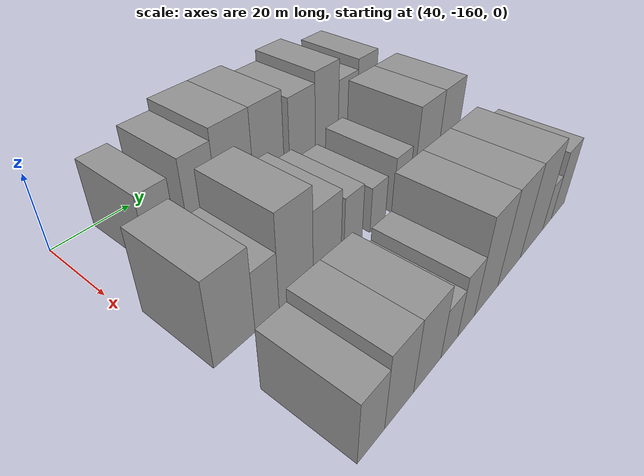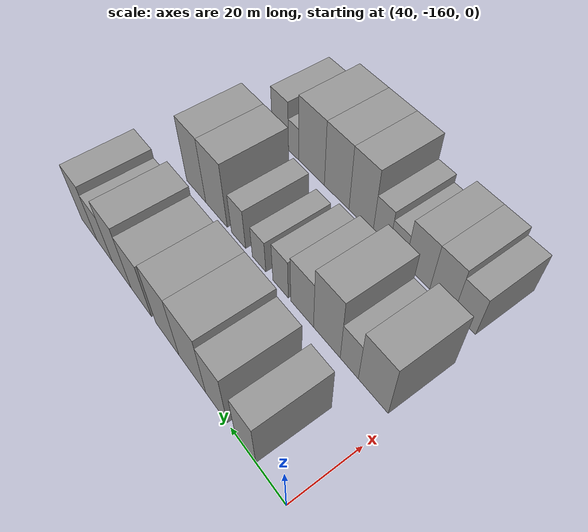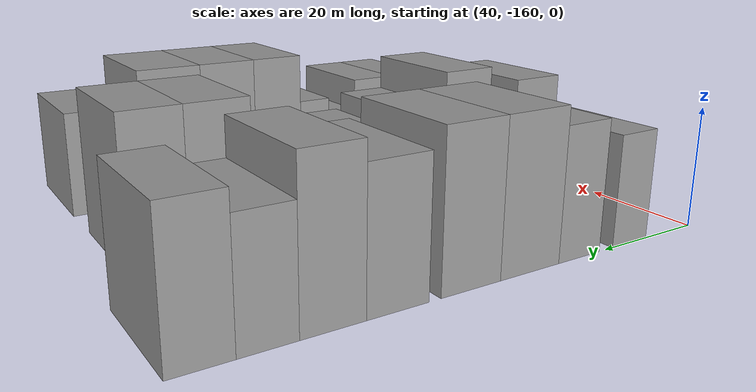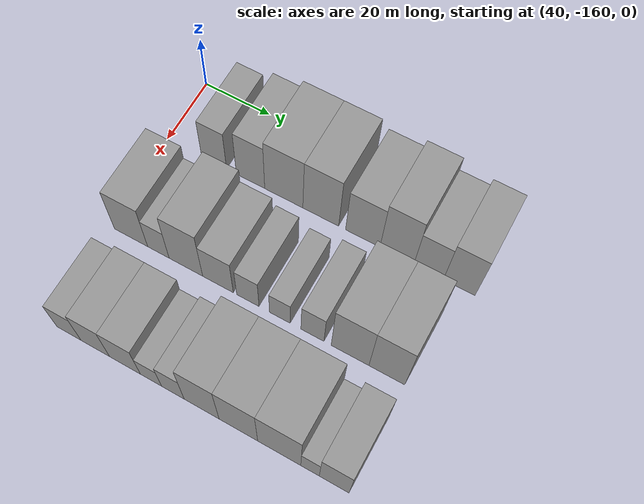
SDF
<sdf version="1.6">
 <world name="default">
  <model name="building_21">
   <static>1</static>
   <pose>50.0000 -145.4644 0 0.000000 0.000000 0.000000</pose>
   <link name="link">
    <pose>0 0 9.00 0 0 0</pose>
    <collision name="collision"><geometry><box><size>20.0000 7.7281 18.0000</size></box></geometry></collision>
    <visual name="visual">
     <cast_shadows>0</cast_shadows>
     <geometry><box><size>20.0000 7.7281 18.0000</size></box></geometry>
     <material>
      <script>
       <uri>model://grey_wall/materials/scripts</uri>
       <uri>model://grey_wall/materials/textures</uri>
       <name>vrc/grey_wall</name>
      </script>
     </material>
    </visual>
   </link>
  </model>
  <model name="building_22">
   <static>1</static>
   <pose>50.0000 -134.2863 0 0.000000 0.000000 0.000000</pose>
   <link name="link">
    <pose>0 0 10.50 0 0 0</pose>
    <collision name="collision"><geometry><box><size>20.0000 8.6280 21.0000</size></box></geometry></collision>
    <visual name="visual">
     <cast_shadows>0</cast_shadows>
     <geometry><box><size>20.0000 8.6280 21.0000</size></box></geometry>
     <material>
      <script>
       <uri>model://grey_wall/materials/scripts</uri>
       <uri>model://grey_wall/materials/textures</uri>
       <name>vrc/grey_wall</name>
      </script>
     </material>
    </visual>
   </link>
  </model>
  <model name="building_23">
   <static>1</static>
   <pose>50.0000 -124.2714 0 0.000000 0.000000 0.000000</pose>
   <link name="link">
    <pose>0 0 12.00 0 0 0</pose>
    <collision name="collision"><geometry><box><size>20.0000 11.4019 24.0000</size></box></geometry></collision>
    <visual name="visual">
     <cast_shadows>0</cast_shadows>
     <geometry><box><size>20.0000 11.4019 24.0000</size></box></geometry>
     <material>
      <script>
       <uri>model://grey_wall/materials/scripts</uri>
       <uri>model://grey_wall/materials/textures</uri>
       <name>vrc/grey_wall</name>
      </script>
     </material>
    </visual>
   </link>
  </model>
  <model name="building_24">
   <static>1</static>
   <pose>50.0000 -113.2940 0 0.000000 0.000000 0.000000</pose>
   <link name="link">
    <pose>0 0 12.00 0 0 0</pose>
    <collision name="collision"><geometry><box><size>20.0000 10.5528 24.0000</size></box></geometry></collision>
    <visual name="visual">
     <cast_shadows>0</cast_shadows>
     <geometry><box><size>20.0000 10.5528 24.0000</size></box></geometry>
     <material>
      <script>
       <uri>model://grey_wall/materials/scripts</uri>
       <uri>model://grey_wall/materials/textures</uri>
       <name>vrc/grey_wall</name>
      </script>
     </material>
    </visual>
   </link>
  </model>
  <model name="building_25">
   <static>1</static>
   <pose>50.0000 -101.0536 0 0.000000 0.000000 0.000000</pose>
   <link name="link">
    <pose>0 0 10.50 0 0 0</pose>
    <collision name="collision"><geometry><box><size>20.0000 9.9282 21.0000</size></box></geometry></collision>
    <visual name="visual">
     <cast_shadows>0</cast_shadows>
     <geometry><box><size>20.0000 9.9282 21.0000</size></box></geometry>
     <material>
      <script>
       <uri>model://grey_wall/materials/scripts</uri>
       <uri>model://grey_wall/materials/textures</uri>
       <name>vrc/grey_wall</name>
      </script>
     </material>
    </visual>
   </link>
  </model>
  <model name="building_26">
   <static>1</static>
   <pose>50.0000 -91.2819 0 0.000000 0.000000 0.000000</pose>
   <link name="link">
    <pose>0 0 12.00 0 0 0</pose>
    <collision name="collision"><geometry><box><size>20.0000 9.6151 24.0000</size></box></geometry></collision>
    <visual name="visual">
     <cast_shadows>0</cast_shadows>
     <geometry><box><size>20.0000 9.6151 24.0000</size></box></geometry>
     <material>
      <script>
       <uri>model://grey_wall/materials/scripts</uri>
       <uri>model://grey_wall/materials/textures</uri>
       <name>vrc/grey_wall</name>
      </script>
     </material>
    </visual>
   </link>
  </model>
  <model name="building_27">
   <static>1</static>
   <pose>50.0000 -82.3182 0 0.000000 0.000000 0.000000</pose>
   <link name="link">
    <pose>0 0 9.00 0 0 0</pose>
    <collision name="collision"><geometry><box><size>20.0000 8.3124 18.0000</size></box></geometry></collision>
    <visual name="visual">
     <cast_shadows>0</cast_shadows>
     <geometry><box><size>20.0000 8.3124 18.0000</size></box></geometry>
     <material>
      <script>
       <uri>model://grey_wall/materials/scripts</uri>
       <uri>model://grey_wall/materials/textures</uri>
       <name>vrc/grey_wall</name>
      </script>
     </material>
    </visual>
   </link>
  </model>
  <model name="building_28">
   <static>1</static>
   <pose>50.0000 -73.7900 0 0.000000 0.000000 0.000000</pose>
   <link name="link">
    <pose>0 0 10.50 0 0 0</pose>
    <collision name="collision"><geometry><box><size>20.0000 8.7438 21.0000</size></box></geometry></collision>
    <visual name="visual">
     <cast_shadows>0</cast_shadows>
     <geometry><box><size>20.0000 8.7438 21.0000</size></box></geometry>
     <material>
      <script>
       <uri>model://grey_wall/materials/scripts</uri>
       <uri>model://grey_wall/materials/textures</uri>
       <name>vrc/grey_wall</name>
      </script>
     </material>
    </visual>
   </link>
  </model>
  <model name="building_89">
   <static>1</static>
   <pose>79.0000 -152.6874 0 0.000000 0.000000 0.000000</pose>
   <link name="link">
    <pose>0 0 10.50 0 0 0</pose>
    <collision name="collision"><geometry><box><size>20.0000 10.1097 21.0000</size></box></geometry></collision>
    <visual name="visual">
     <cast_shadows>0</cast_shadows>
     <geometry><box><size>20.0000 10.1097 21.0000</size></box></geometry>
     <material>
      <script>
       <uri>model://grey_wall/materials/scripts</uri>
       <uri>model://grey_wall/materials/textures</uri>
       <name>vrc/grey_wall</name>
      </script>
     </material>
    </visual>
   </link>
  </model>
  <model name="building_90">
   <static>1</static>
   <pose>79.0000 -144.4076 0 0.000000 0.000000 0.000000</pose>
   <link name="link">
    <pose>0 0 7.50 0 0 0</pose>
    <collision name="collision"><geometry><box><size>20.0000 6.4501 15.0000</size></box></geometry></collision>
    <visual name="visual">
     <cast_shadows>0</cast_shadows>
     <geometry><box><size>20.0000 6.4501 15.0000</size></box></geometry>
     <material>
      <script>
       <uri>model://grey_wall/materials/scripts</uri>
       <uri>model://grey_wall/materials/textures</uri>
       <name>vrc/grey_wall</name>
      </script>
     </material>
    </visual>
   </link>
  </model>
  <model name="building_91">
   <static>1</static>
   <pose>79.0000 -136.1955 0 0.000000 0.000000 0.000000</pose>
   <link name="link">
    <pose>0 0 12.00 0 0 0</pose>
    <collision name="collision"><geometry><box><size>20.0000 9.9741 24.0000</size></box></geometry></collision>
    <visual name="visual">
     <cast_shadows>0</cast_shadows>
     <geometry><box><size>20.0000 9.9741 24.0000</size></box></geometry>
     <material>
      <script>
       <uri>model://grey_wall/materials/scripts</uri>
       <uri>model://grey_wall/materials/textures</uri>
       <name>vrc/grey_wall</name>
      </script>
     </material>
    </visual>
   </link>
  </model>
  <model name="building_92">
   <static>1</static>
   <pose>79.0000 -126.7322 0 0.000000 0.000000 0.000000</pose>
   <link name="link">
    <pose>0 0 9.00 0 0 0</pose>
    <collision name="collision"><geometry><box><size>20.0000 8.9524 18.0000</size></box></geometry></collision>
    <visual name="visual">
     <cast_shadows>0</cast_shadows>
     <geometry><box><size>20.0000 8.9524 18.0000</size></box></geometry>
     <material>
      <script>
       <uri>model://grey_wall/materials/scripts</uri>
       <uri>model://grey_wall/materials/textures</uri>
       <name>vrc/grey_wall</name>
      </script>
     </material>
    </visual>
   </link>
  </model>
  <model name="building_93">
   <static>1</static>
   <pose>79.0000 -118.0526 0 0.000000 0.000000 0.000000</pose>
   <link name="link">
    <pose>0 0 7.50 0 0 0</pose>
    <collision name="collision"><geometry><box><size>20.0000 6.4068 15.0000</size></box></geometry></collision>
    <visual name="visual">
     <cast_shadows>0</cast_shadows>
     <geometry><box><size>20.0000 6.4068 15.0000</size></box></geometry>
     <material>
      <script>
       <uri>model://grey_wall/materials/scripts</uri>
       <uri>model://grey_wall/materials/textures</uri>
       <name>vrc/grey_wall</name>
      </script>
     </material>
    </visual>
   </link>
  </model>
  <model name="building_94">
   <static>1</static>
   <pose>79.0000 -108.9074 0 0.000000 0.000000 0.000000</pose>
   <link name="link">
    <pose>0 0 6.00 0 0 0</pose>
    <collision name="collision"><geometry><box><size>20.0000 5.8836 12.0000</size></box></geometry></collision>
    <visual name="visual">
     <cast_shadows>0</cast_shadows>
     <geometry><box><size>20.0000 5.8836 12.0000</size></box></geometry>
     <material>
      <script>
       <uri>model://grey_wall/materials/scripts</uri>
       <uri>model://grey_wall/materials/textures</uri>
       <name>vrc/grey_wall</name>
      </script>
     </material>
    </visual>
   </link>
  </model>
  <model name="building_95">
   <static>1</static>
   <pose>79.0000 -99.7361 0 0.000000 0.000000 0.000000</pose>
   <link name="link">
    <pose>0 0 7.50 0 0 0</pose>
    <collision name="collision"><geometry><box><size>20.0000 6.4590 15.0000</size></box></geometry></collision>
    <visual name="visual">
     <cast_shadows>0</cast_shadows>
     <geometry><box><size>20.0000 6.4590 15.0000</size></box></geometry>
     <material>
      <script>
       <uri>model://grey_wall/materials/scripts</uri>
       <uri>model://grey_wall/materials/textures</uri>
       <name>vrc/grey_wall</name>
      </script>
     </material>
    </visual>
   </link>
  </model>
  <model name="building_96">
   <static>1</static>
   <pose>79.0000 -89.3133 0 0.000000 0.000000 0.000000</pose>
   <link name="link">
    <pose>0 0 12.00 0 0 0</pose>
    <collision name="collision"><geometry><box><size>20.0000 10.3865 24.0000</size></box></geometry></collision>
    <visual name="visual">
     <cast_shadows>0</cast_shadows>
     <geometry><box><size>20.0000 10.3865 24.0000</size></box></geometry>
     <material>
      <script>
       <uri>model://grey_wall/materials/scripts</uri>
       <uri>model://grey_wall/materials/textures</uri>
       <name>vrc/grey_wall</name>
      </script>
     </material>
    </visual>
   </link>
  </model>
  <model name="building_97">
   <static>1</static>
   <pose>79.0000 -79.2714 0 0.000000 0.000000 0.000000</pose>
   <link name="link">
    <pose>0 0 12.00 0 0 0</pose>
    <collision name="collision"><geometry><box><size>20.0000 9.6973 24.0000</size></box></geometry></collision>
    <visual name="visual">
     <cast_shadows>0</cast_shadows>
     <geometry><box><size>20.0000 9.6973 24.0000</size></box></geometry>
     <material>
      <script>
       <uri>model://grey_wall/materials/scripts</uri>
       <uri>model://grey_wall/materials/textures</uri>
       <name>vrc/grey_wall</name>
      </script>
     </material>
    </visual>
   </link>
  </model>
  <model name="building_164">
   <static>1</static>
   <pose>108.0000 -151.8435 0 0.000000 0.000000 0.000000</pose>
   <link name="link">
    <pose>0 0 7.50 0 0 0</pose>
    <collision name="collision"><geometry><box><size>20.0000 7.1633 15.0000</size></box></geometry></collision>
    <visual name="visual">
     <cast_shadows>0</cast_shadows>
     <geometry><box><size>20.0000 7.1633 15.0000</size></box></geometry>
     <material>
      <script>
       <uri>model://grey_wall/materials/scripts</uri>
       <uri>model://grey_wall/materials/textures</uri>
       <name>vrc/grey_wall</name>
      </script>
     </material>
    </visual>
   </link>
  </model>
  <model name="building_165">
   <static>1</static>
   <pose>108.0000 -144.0791 0 0.000000 0.000000 0.000000</pose>
   <link name="link">
    <pose>0 0 9.00 0 0 0</pose>
    <collision name="collision"><geometry><box><size>20.0000 8.3655 18.0000</size></box></geometry></collision>
    <visual name="visual">
     <cast_shadows>0</cast_shadows>
     <geometry><box><size>20.0000 8.3655 18.0000</size></box></geometry>
     <material>
      <script>
       <uri>model://grey_wall/materials/scripts</uri>
       <uri>model://grey_wall/materials/textures</uri>
       <name>vrc/grey_wall</name>
      </script>
     </material>
    </visual>
   </link>
  </model>
  <model name="building_166">
   <static>1</static>
   <pose>108.0000 -135.4470 0 0.000000 0.000000 0.000000</pose>
   <link name="link">
    <pose>0 0 9.00 0 0 0</pose>
    <collision name="collision"><geometry><box><size>20.0000 8.8987 18.0000</size></box></geometry></collision>
    <visual name="visual">
     <cast_shadows>0</cast_shadows>
     <geometry><box><size>20.0000 8.8987 18.0000</size></box></geometry>
     <material>
      <script>
       <uri>model://grey_wall/materials/scripts</uri>
       <uri>model://grey_wall/materials/textures</uri>
       <name>vrc/grey_wall</name>
      </script>
     </material>
    </visual>
   </link>
  </model>
  <model name="building_167">
   <static>1</static>
   <pose>108.0000 -127.9990 0 0.000000 0.000000 0.000000</pose>
   <link name="link">
    <pose>0 0 6.00 0 0 0</pose>
    <collision name="collision"><geometry><box><size>20.0000 5.9972 12.0000</size></box></geometry></collision>
    <visual name="visual">
     <cast_shadows>0</cast_shadows>
     <geometry><box><size>20.0000 5.9972 12.0000</size></box></geometry>
     <material>
      <script>
       <uri>model://grey_wall/materials/scripts</uri>
       <uri>model://grey_wall/materials/textures</uri>
       <name>vrc/grey_wall</name>
      </script>
     </material>
    </visual>
   </link>
  </model>
  <model name="building_168">
   <static>1</static>
   <pose>108.0000 -121.8018 0 0.000000 0.000000 0.000000</pose>
   <link name="link">
    <pose>0 0 7.50 0 0 0</pose>
    <collision name="collision"><geometry><box><size>20.0000 6.3971 15.0000</size></box></geometry></collision>
    <visual name="visual">
     <cast_shadows>0</cast_shadows>
     <geometry><box><size>20.0000 6.3971 15.0000</size></box></geometry>
     <material>
      <script>
       <uri>model://grey_wall/materials/scripts</uri>
       <uri>model://grey_wall/materials/textures</uri>
       <name>vrc/grey_wall</name>
      </script>
     </material>
    </visual>
   </link>
  </model>
  <model name="building_169">
   <static>1</static>
   <pose>108.0000 -113.7457 0 0.000000 0.000000 0.000000</pose>
   <link name="link">
    <pose>0 0 12.00 0 0 0</pose>
    <collision name="collision"><geometry><box><size>20.0000 9.7153 24.0000</size></box></geometry></collision>
    <visual name="visual">
     <cast_shadows>0</cast_shadows>
     <geometry><box><size>20.0000 9.7153 24.0000</size></box></geometry>
     <material>
      <script>
       <uri>model://grey_wall/materials/scripts</uri>
       <uri>model://grey_wall/materials/textures</uri>
       <name>vrc/grey_wall</name>
      </script>
     </material>
    </visual>
   </link>
  </model>
  <model name="building_170">
   <static>1</static>
   <pose>108.0000 -103.6150 0 0.000000 0.000000 0.000000</pose>
   <link name="link">
    <pose>0 0 12.00 0 0 0</pose>
    <collision name="collision"><geometry><box><size>20.0000 10.5462 24.0000</size></box></geometry></collision>
    <visual name="visual">
     <cast_shadows>0</cast_shadows>
     <geometry><box><size>20.0000 10.5462 24.0000</size></box></geometry>
     <material>
      <script>
       <uri>model://grey_wall/materials/scripts</uri>
       <uri>model://grey_wall/materials/textures</uri>
       <name>vrc/grey_wall</name>
      </script>
     </material>
    </visual>
   </link>
  </model>
  <model name="building_171">
   <static>1</static>
   <pose>108.0000 -92.5693 0 0.000000 0.000000 0.000000</pose>
   <link name="link">
    <pose>0 0 12.00 0 0 0</pose>
    <collision name="collision"><geometry><box><size>20.0000 11.5452 24.0000</size></box></geometry></collision>
    <visual name="visual">
     <cast_shadows>0</cast_shadows>
     <geometry><box><size>20.0000 11.5452 24.0000</size></box></geometry>
     <material>
      <script>
       <uri>model://grey_wall/materials/scripts</uri>
       <uri>model://grey_wall/materials/textures</uri>
       <name>vrc/grey_wall</name>
      </script>
     </material>
    </visual>
   </link>
  </model>
  <model name="building_172">
   <static>1</static>
   <pose>108.0000 -84.3582 0 0.000000 0.000000 0.000000</pose>
   <link name="link">
    <pose>0 0 6.00 0 0 0</pose>
    <collision name="collision"><geometry><box><size>20.0000 4.8769 12.0000</size></box></geometry></collision>
    <visual name="visual">
     <cast_shadows>0</cast_shadows>
     <geometry><box><size>20.0000 4.8769 12.0000</size></box></geometry>
     <material>
      <script>
       <uri>model://grey_wall/materials/scripts</uri>
       <uri>model://grey_wall/materials/textures</uri>
       <name>vrc/grey_wall</name>
      </script>
     </material>
    </visual>
   </link>
  </model>
  <model name="building_173">
   <static>1</static>
   <pose>108.0000 -78.0240 0 0.000000 0.000000 0.000000</pose>
   <link name="link">
    <pose>0 0 9.00 0 0 0</pose>
    <collision name="collision"><geometry><box><size>20.0000 7.7917 18.0000</size></box></geometry></collision>
    <visual name="visual">
     <cast_shadows>0</cast_shadows>
     <geometry><box><size>20.0000 7.7917 18.0000</size></box></geometry>
     <material>
      <script>
       <uri>model://grey_wall/materials/scripts</uri>
       <uri>model://grey_wall/materials/textures</uri>
       <name>vrc/grey_wall</name>
      </script>
     </material>
    </visual>
   </link>
  </model>
 </world>
</sdf>
